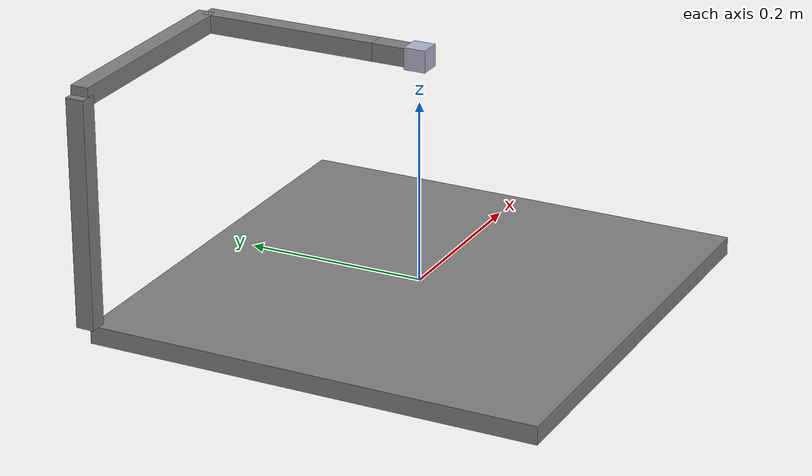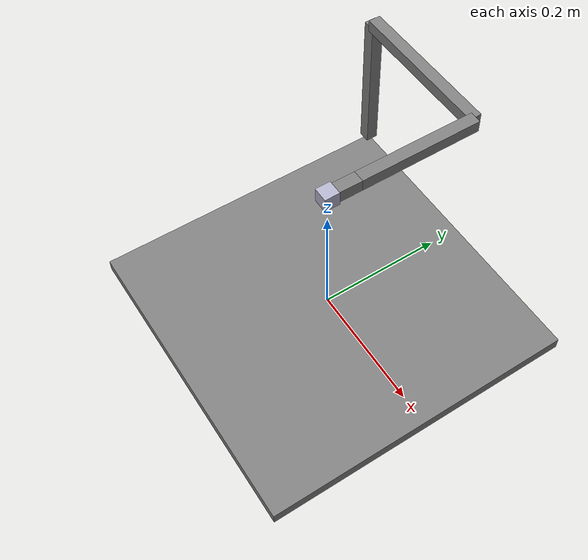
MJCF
<mujoco model="MuJoCo Model">
  <compiler angle="radian" autolimits="true"/>
  <option timestep="0.001" viscosity="10" integrator="implicit">
    <flag contact="disable" gravity="disable"/>
  </option>
  <statistic meansize="0.05"/>
  <default class="main">
    <joint damping="0.0001"/>
    <site size="0.012 0.012 0.012" type="box" rgba="0.7 0.7 0.8 1"/>
    <default class="translation">
      <general ctrlrange="-0.25 0.25" biastype="affine" gainprm="100 0 0 0 0 0 0 0 0 0" biasprm="0 -100 -10 0 0 0 0 0 0 0"/>
    </default>
    <default class="rotation">
      <general ctrlrange="-1.571 1.571" biastype="affine" gainprm="0.5 0 0 0 0 0 0 0 0 0" biasprm="0 -0.5 -0.05 0 0 0 0 0 0 0"/>
    </default>
  </default>
  <worldbody>
    <geom size="0.25 0.25 0.01" pos="0 0 -0.01" type="box"/>
    <site name="reference" pos="0 0 0.25"/>
    <light pos="0 0 2" dir="0 0 -1"/>
    <body name="arm" pos="-0.25 0.25 0">
      <joint pos="0 0 0" type="ball"/>
      <geom size="0.01 0.01 0.125" pos="0 0 0.125" quat="0 1 0 0" type="box"/>
      <body pos="0 0 0.25">
        <joint pos="0 0 0" type="ball"/>
        <geom size="0.01 0.01 0.125" pos="0.125 0 0" quat="0.707107 0 -0.707107 0" type="box"/>
        <body pos="0.25 0 0">
          <joint pos="0 0 0" type="ball"/>
          <geom size="0.01 0.01 0.1" pos="0 -0.1 0" quat="0.707107 -0.707107 0 0" type="box"/>
          <body pos="0 -0.2 0">
            <joint pos="0 0 0" type="ball"/>
            <geom size="0.01 0.01 0.025" pos="0 -0.025 0" quat="0.707107 -0.707107 0 0" type="box"/>
            <site name="end_effector" pos="0 -0.05 0"/>
          </body>
        </body>
      </body>
    </body>
  </worldbody>
  <actuator>
    <general name="x" class="translation" site="end_effector" refsite="reference"/>
    <general name="y" class="translation" site="end_effector" refsite="reference" gear="0 1 0 0 0 0"/>
    <general name="z" class="translation" site="end_effector" refsite="reference" gear="0 0 1 0 0 0"/>
    <general name="rx" class="rotation" site="end_effector" refsite="reference" gear="0 0 0 1 0 0"/>
    <general name="ry" class="rotation" site="end_effector" refsite="reference" gear="0 0 0 0 1 0"/>
    <general name="rz" class="rotation" site="end_effector" refsite="reference" gear="0 0 0 0 0 1"/>
  </actuator>
</mujoco>
